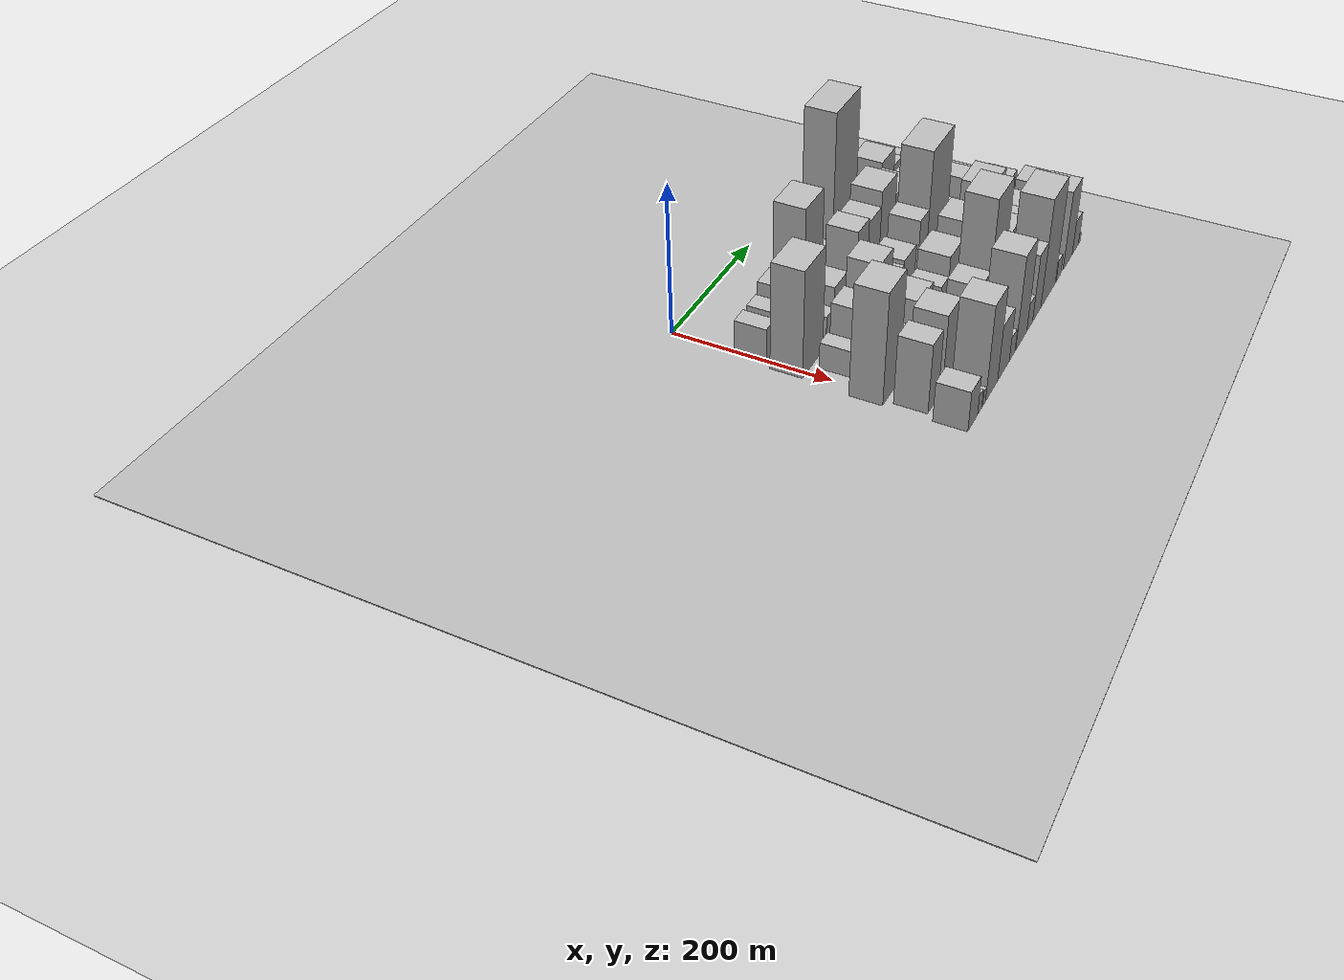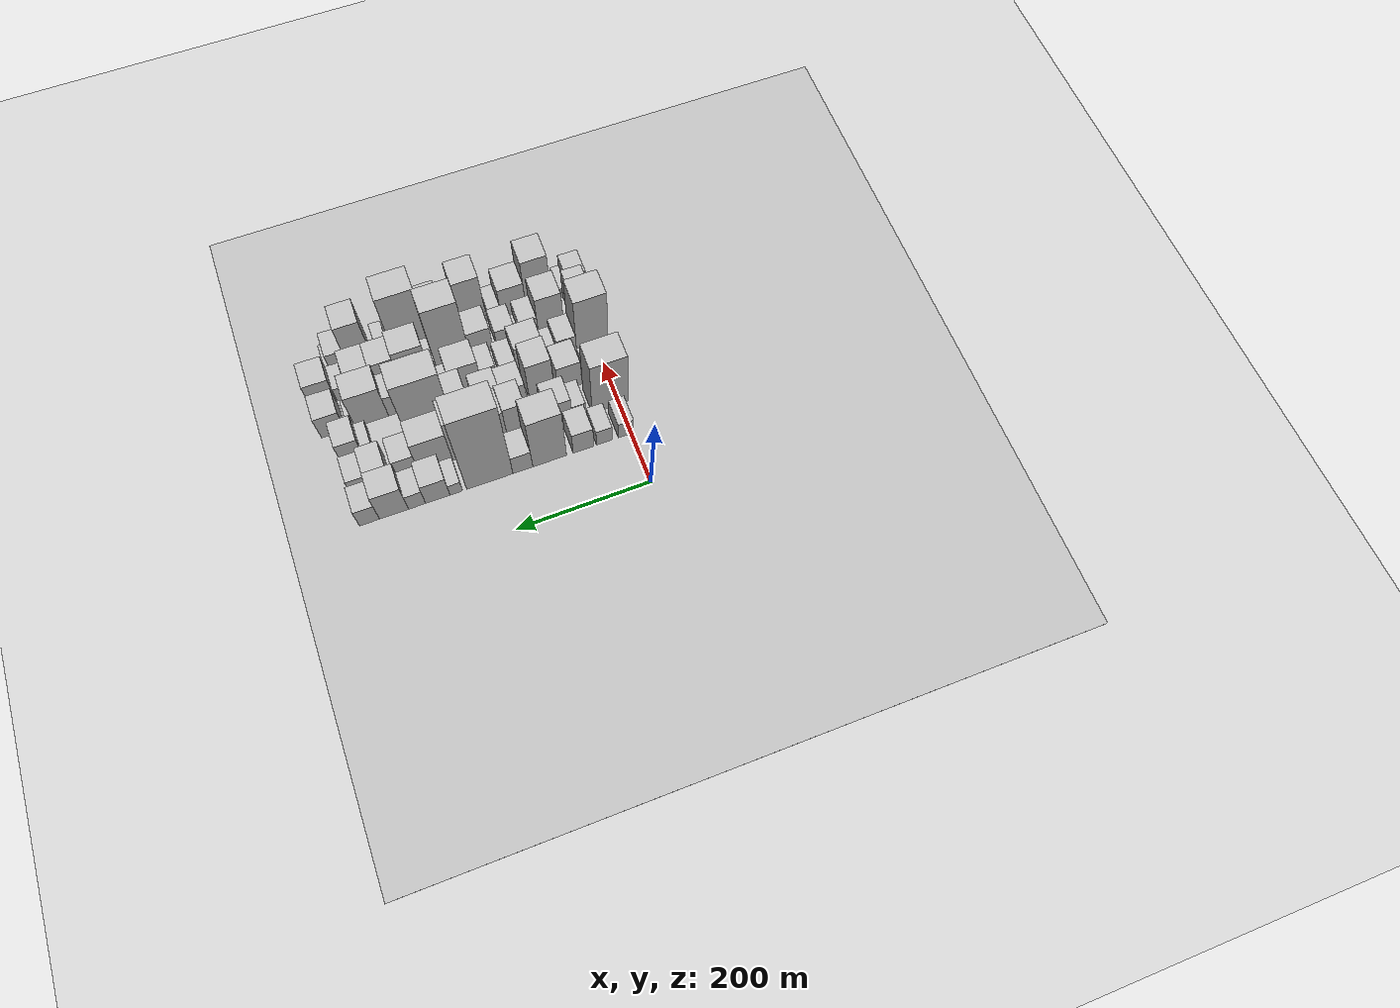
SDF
<sdf version="1.6">
 <world name="default">
  <include><name>ground_plane_1</name><uri>model://HANNAS_ground_plane</uri></include>
  <include>
   <name>ground_plane_2</name>
   <uri>model://HANNAS_ground_plane</uri>
   <pose>100 0 0  0 0 0</pose>
  </include>
  <model name="building_27">
   <static>1</static>
   <pose>100.0000 9.3571 0 0.000000 0.000000 0.000000</pose>
   <link name="link">
    <pose>0 0 22.50 0 0 0</pose>
    <collision name="collision"><geometry><box><size>40.0000 23.0918 45.0000</size></box></geometry></collision>
    <visual name="visual">
     <cast_shadows>0</cast_shadows>
     <geometry><box><size>40.0000 23.0918 45.0000</size></box></geometry>
     <material>
      <script>
       <uri>model://HANNAS_wall/materials/scripts</uri>
       <uri>model://HANNAS_wall/materials/textures</uri>
       <name>vrc/HANNAS_wall</name>
      </script>
     </material>
    </visual>
   </link>
  </model>
  <model name="building_28">
   <static>1</static>
   <pose>100.0000 41.8925 0 0.000000 0.000000 0.000000</pose>
   <link name="link">
    <pose>0 0 22.50 0 0 0</pose>
    <collision name="collision"><geometry><box><size>40.0000 23.9791 45.0000</size></box></geometry></collision>
    <visual name="visual">
     <cast_shadows>0</cast_shadows>
     <geometry><box><size>40.0000 23.9791 45.0000</size></box></geometry>
     <material>
      <script>
       <uri>model://HANNAS_wall/materials/scripts</uri>
       <uri>model://HANNAS_wall/materials/textures</uri>
       <name>vrc/HANNAS_wall</name>
      </script>
     </material>
    </visual>
   </link>
  </model>
  <model name="building_29">
   <static>1</static>
   <pose>100.0000 73.4881 0 0.000000 0.000000 0.000000</pose>
   <link name="link">
    <pose>0 0 30.00 0 0 0</pose>
    <collision name="collision"><geometry><box><size>40.0000 31.2120 60.0000</size></box></geometry></collision>
    <visual name="visual">
     <cast_shadows>0</cast_shadows>
     <geometry><box><size>40.0000 31.2120 60.0000</size></box></geometry>
     <material>
      <script>
       <uri>model://HANNAS_wall/materials/scripts</uri>
       <uri>model://HANNAS_wall/materials/textures</uri>
       <name>vrc/HANNAS_wall</name>
      </script>
     </material>
    </visual>
   </link>
  </model>
  <model name="building_30">
   <static>1</static>
   <pose>100.0000 124.2129 0 0.000000 0.000000 0.000000</pose>
   <link name="link">
    <pose>0 0 72.00 0 0 0</pose>
    <collision name="collision"><geometry><box><size>40.0000 50.2375 144.0000</size></box></geometry></collision>
    <visual name="visual">
     <cast_shadows>0</cast_shadows>
     <geometry><box><size>40.0000 50.2375 144.0000</size></box></geometry>
     <material>
      <script>
       <uri>model://HANNAS_wall/materials/scripts</uri>
       <uri>model://HANNAS_wall/materials/textures</uri>
       <name>vrc/HANNAS_wall</name>
      </script>
     </material>
    </visual>
   </link>
  </model>
  <model name="building_31">
   <static>1</static>
   <pose>100.0000 164.1089 0 0.000000 0.000000 0.000000</pose>
   <link name="link">
    <pose>0 0 27.00 0 0 0</pose>
    <collision name="collision"><geometry><box><size>40.0000 29.5546 54.0000</size></box></geometry></collision>
    <visual name="visual">
     <cast_shadows>0</cast_shadows>
     <geometry><box><size>40.0000 29.5546 54.0000</size></box></geometry>
     <material>
      <script>
       <uri>model://HANNAS_wall/materials/scripts</uri>
       <uri>model://HANNAS_wall/materials/textures</uri>
       <name>vrc/HANNAS_wall</name>
      </script>
     </material>
    </visual>
   </link>
  </model>
  <model name="building_32">
   <static>1</static>
   <pose>100.0000 213.0105 0 0.000000 0.000000 0.000000</pose>
   <link name="link">
    <pose>0 0 112.50 0 0 0</pose>
    <collision name="collision"><geometry><box><size>40.0000 68.2486 225.0000</size></box></geometry></collision>
    <visual name="visual">
     <cast_shadows>0</cast_shadows>
     <geometry><box><size>40.0000 68.2486 225.0000</size></box></geometry>
     <material>
      <script>
       <uri>model://HANNAS_wall/materials/scripts</uri>
       <uri>model://HANNAS_wall/materials/textures</uri>
       <name>vrc/HANNAS_wall</name>
      </script>
     </material>
    </visual>
   </link>
  </model>
  <model name="building_33">
   <static>1</static>
   <pose>100.0000 262.2809 0 0.000000 0.000000 0.000000</pose>
   <link name="link">
    <pose>0 0 16.50 0 0 0</pose>
    <collision name="collision"><geometry><box><size>40.0000 18.2922 33.0000</size></box></geometry></collision>
    <visual name="visual">
     <cast_shadows>0</cast_shadows>
     <geometry><box><size>40.0000 18.2922 33.0000</size></box></geometry>
     <material>
      <script>
       <uri>model://HANNAS_wall/materials/scripts</uri>
       <uri>model://HANNAS_wall/materials/textures</uri>
       <name>vrc/HANNAS_wall</name>
      </script>
     </material>
    </visual>
   </link>
  </model>
  <model name="building_34">
   <static>1</static>
   <pose>100.0000 289.1809 0 0.000000 0.000000 0.000000</pose>
   <link name="link">
    <pose>0 0 30.00 0 0 0</pose>
    <collision name="collision"><geometry><box><size>40.0000 35.5078 60.0000</size></box></geometry></collision>
    <visual name="visual">
     <cast_shadows>0</cast_shadows>
     <geometry><box><size>40.0000 35.5078 60.0000</size></box></geometry>
     <material>
      <script>
       <uri>model://HANNAS_wall/materials/scripts</uri>
       <uri>model://HANNAS_wall/materials/textures</uri>
       <name>vrc/HANNAS_wall</name>
      </script>
     </material>
    </visual>
   </link>
  </model>
  <model name="building_35">
   <static>1</static>
   <pose>100.0000 319.2703 0 0.000000 0.000000 0.000000</pose>
   <link name="link">
    <pose>0 0 22.50 0 0 0</pose>
    <collision name="collision"><geometry><box><size>40.0000 24.6710 45.0000</size></box></geometry></collision>
    <visual name="visual">
     <cast_shadows>0</cast_shadows>
     <geometry><box><size>40.0000 24.6710 45.0000</size></box></geometry>
     <material>
      <script>
       <uri>model://HANNAS_wall/materials/scripts</uri>
       <uri>model://HANNAS_wall/materials/textures</uri>
       <name>vrc/HANNAS_wall</name>
      </script>
     </material>
    </visual>
   </link>
  </model>
  <model name="building_36">
   <static>1</static>
   <pose>100.0000 352.4408 0 0.000000 0.000000 0.000000</pose>
   <link name="link">
    <pose>0 0 39.00 0 0 0</pose>
    <collision name="collision"><geometry><box><size>40.0000 41.6700 78.0000</size></box></geometry></collision>
    <visual name="visual">
     <cast_shadows>0</cast_shadows>
     <geometry><box><size>40.0000 41.6700 78.0000</size></box></geometry>
     <material>
      <script>
       <uri>model://HANNAS_wall/materials/scripts</uri>
       <uri>model://HANNAS_wall/materials/textures</uri>
       <name>vrc/HANNAS_wall</name>
      </script>
     </material>
    </visual>
   </link>
  </model>
  <model name="building_37">
   <static>1</static>
   <pose>100.0000 387.5940 0 0.000000 0.000000 0.000000</pose>
   <link name="link">
    <pose>0 0 25.50 0 0 0</pose>
    <collision name="collision"><geometry><box><size>40.0000 28.6363 51.0000</size></box></geometry></collision>
    <visual name="visual">
     <cast_shadows>0</cast_shadows>
     <geometry><box><size>40.0000 28.6363 51.0000</size></box></geometry>
     <material>
      <script>
       <uri>model://HANNAS_wall/materials/scripts</uri>
       <uri>model://HANNAS_wall/materials/textures</uri>
       <name>vrc/HANNAS_wall</name>
      </script>
     </material>
    </visual>
   </link>
  </model>
  <model name="building_76">
   <static>1</static>
   <pose>149.0000 15.7540 0 0.000000 0.000000 0.000000</pose>
   <link name="link">
    <pose>0 0 72.00 0 0 0</pose>
    <collision name="collision"><geometry><box><size>40.0000 54.6630 144.0000</size></box></geometry></collision>
    <visual name="visual">
     <cast_shadows>0</cast_shadows>
     <geometry><box><size>40.0000 54.6630 144.0000</size></box></geometry>
     <material>
      <script>
       <uri>model://HANNAS_wall/materials/scripts</uri>
       <uri>model://HANNAS_wall/materials/textures</uri>
       <name>vrc/HANNAS_wall</name>
      </script>
     </material>
    </visual>
   </link>
  </model>
  <model name="building_77">
   <static>1</static>
   <pose>149.0000 62.5877 0 0.000000 0.000000 0.000000</pose>
   <link name="link">
    <pose>0 0 21.00 0 0 0</pose>
    <collision name="collision"><geometry><box><size>40.0000 21.0043 42.0000</size></box></geometry></collision>
    <visual name="visual">
     <cast_shadows>0</cast_shadows>
     <geometry><box><size>40.0000 21.0043 42.0000</size></box></geometry>
     <material>
      <script>
       <uri>model://HANNAS_wall/materials/scripts</uri>
       <uri>model://HANNAS_wall/materials/textures</uri>
       <name>vrc/HANNAS_wall</name>
      </script>
     </material>
    </visual>
   </link>
  </model>
  <model name="building_78">
   <static>1</static>
   <pose>149.0000 91.2776 0 0.000000 0.000000 0.000000</pose>
   <link name="link">
    <pose>0 0 34.50 0 0 0</pose>
    <collision name="collision"><geometry><box><size>40.0000 36.3755 69.0000</size></box></geometry></collision>
    <visual name="visual">
     <cast_shadows>0</cast_shadows>
     <geometry><box><size>40.0000 36.3755 69.0000</size></box></geometry>
     <material>
      <script>
       <uri>model://HANNAS_wall/materials/scripts</uri>
       <uri>model://HANNAS_wall/materials/textures</uri>
       <name>vrc/HANNAS_wall</name>
      </script>
     </material>
    </visual>
   </link>
  </model>
  <model name="building_79">
   <static>1</static>
   <pose>149.0000 119.8651 0 0.000000 0.000000 0.000000</pose>
   <link name="link">
    <pose>0 0 19.50 0 0 0</pose>
    <collision name="collision"><geometry><box><size>40.0000 20.7996 39.0000</size></box></geometry></collision>
    <visual name="visual">
     <cast_shadows>0</cast_shadows>
     <geometry><box><size>40.0000 20.7996 39.0000</size></box></geometry>
     <material>
      <script>
       <uri>model://HANNAS_wall/materials/scripts</uri>
       <uri>model://HANNAS_wall/materials/textures</uri>
       <name>vrc/HANNAS_wall</name>
      </script>
     </material>
    </visual>
   </link>
  </model>
  <model name="building_80">
   <static>1</static>
   <pose>149.0000 153.3168 0 0.000000 0.000000 0.000000</pose>
   <link name="link">
    <pose>0 0 52.50 0 0 0</pose>
    <collision name="collision"><geometry><box><size>40.0000 32.1037 105.0000</size></box></geometry></collision>
    <visual name="visual">
     <cast_shadows>0</cast_shadows>
     <geometry><box><size>40.0000 32.1037 105.0000</size></box></geometry>
     <material>
      <script>
       <uri>model://HANNAS_wall/materials/scripts</uri>
       <uri>model://HANNAS_wall/materials/textures</uri>
       <name>vrc/HANNAS_wall</name>
      </script>
     </material>
    </visual>
   </link>
  </model>
  <model name="building_81">
   <static>1</static>
   <pose>149.0000 187.9750 0 0.000000 0.000000 0.000000</pose>
   <link name="link">
    <pose>0 0 49.50 0 0 0</pose>
    <collision name="collision"><geometry><box><size>40.0000 37.2128 99.0000</size></box></geometry></collision>
    <visual name="visual">
     <cast_shadows>0</cast_shadows>
     <geometry><box><size>40.0000 37.2128 99.0000</size></box></geometry>
     <material>
      <script>
       <uri>model://HANNAS_wall/materials/scripts</uri>
       <uri>model://HANNAS_wall/materials/textures</uri>
       <name>vrc/HANNAS_wall</name>
      </script>
     </material>
    </visual>
   </link>
  </model>
  <model name="building_82">
   <static>1</static>
   <pose>149.0000 229.4782 0 0.000000 0.000000 0.000000</pose>
   <link name="link">
    <pose>0 0 60.00 0 0 0</pose>
    <collision name="collision"><geometry><box><size>40.0000 45.7934 120.0000</size></box></geometry></collision>
    <visual name="visual">
     <cast_shadows>0</cast_shadows>
     <geometry><box><size>40.0000 45.7934 120.0000</size></box></geometry>
     <material>
      <script>
       <uri>model://HANNAS_wall/materials/scripts</uri>
       <uri>model://HANNAS_wall/materials/textures</uri>
       <name>vrc/HANNAS_wall</name>
      </script>
     </material>
    </visual>
   </link>
  </model>
  <model name="building_83">
   <static>1</static>
   <pose>149.0000 277.5151 0 0.000000 0.000000 0.000000</pose>
   <link name="link">
    <pose>0 0 45.00 0 0 0</pose>
    <collision name="collision"><geometry><box><size>40.0000 50.2805 90.0000</size></box></geometry></collision>
    <visual name="visual">
     <cast_shadows>0</cast_shadows>
     <geometry><box><size>40.0000 50.2805 90.0000</size></box></geometry>
     <material>
      <script>
       <uri>model://HANNAS_wall/materials/scripts</uri>
       <uri>model://HANNAS_wall/materials/textures</uri>
       <name>vrc/HANNAS_wall</name>
      </script>
     </material>
    </visual>
   </link>
  </model>
  <model name="building_84">
   <static>1</static>
   <pose>149.0000 318.5125 0 0.000000 0.000000 0.000000</pose>
   <link name="link">
    <pose>0 0 28.50 0 0 0</pose>
    <collision name="collision"><geometry><box><size>40.0000 31.7142 57.0000</size></box></geometry></collision>
    <visual name="visual">
     <cast_shadows>0</cast_shadows>
     <geometry><box><size>40.0000 31.7142 57.0000</size></box></geometry>
     <material>
      <script>
       <uri>model://HANNAS_wall/materials/scripts</uri>
       <uri>model://HANNAS_wall/materials/textures</uri>
       <name>vrc/HANNAS_wall</name>
      </script>
     </material>
    </visual>
   </link>
  </model>
  <model name="building_85">
   <static>1</static>
   <pose>149.0000 358.6118 0 0.000000 0.000000 0.000000</pose>
   <link name="link">
    <pose>0 0 28.50 0 0 0</pose>
    <collision name="collision"><geometry><box><size>40.0000 32.4843 57.0000</size></box></geometry></collision>
    <visual name="visual">
     <cast_shadows>0</cast_shadows>
     <geometry><box><size>40.0000 32.4843 57.0000</size></box></geometry>
     <material>
      <script>
       <uri>model://HANNAS_wall/materials/scripts</uri>
       <uri>model://HANNAS_wall/materials/textures</uri>
       <name>vrc/HANNAS_wall</name>
      </script>
     </material>
    </visual>
   </link>
  </model>
  <model name="building_86">
   <static>1</static>
   <pose>149.0000 387.8299 0 0.000000 0.000000 0.000000</pose>
   <link name="link">
    <pose>0 0 22.50 0 0 0</pose>
    <collision name="collision"><geometry><box><size>40.0000 25.9520 45.0000</size></box></geometry></collision>
    <visual name="visual">
     <cast_shadows>0</cast_shadows>
     <geometry><box><size>40.0000 25.9520 45.0000</size></box></geometry>
     <material>
      <script>
       <uri>model://HANNAS_wall/materials/scripts</uri>
       <uri>model://HANNAS_wall/materials/textures</uri>
       <name>vrc/HANNAS_wall</name>
      </script>
     </material>
    </visual>
   </link>
  </model>
  <model name="building_126">
   <static>1</static>
   <pose>198.0000 23.7838 0 0.000000 0.000000 0.000000</pose>
   <link name="link">
    <pose>0 0 18.00 0 0 0</pose>
    <collision name="collision"><geometry><box><size>40.0000 21.3088 36.0000</size></box></geometry></collision>
    <visual name="visual">
     <cast_shadows>0</cast_shadows>
     <geometry><box><size>40.0000 21.3088 36.0000</size></box></geometry>
     <material>
      <script>
       <uri>model://HANNAS_wall/materials/scripts</uri>
       <uri>model://HANNAS_wall/materials/textures</uri>
       <name>vrc/HANNAS_wall</name>
      </script>
     </material>
    </visual>
   </link>
  </model>
  <model name="building_127">
   <static>1</static>
   <pose>198.0000 59.6754 0 0.000000 0.000000 0.000000</pose>
   <link name="link">
    <pose>0 0 36.00 0 0 0</pose>
    <collision name="collision"><geometry><box><size>40.0000 36.4743 72.0000</size></box></geometry></collision>
    <visual name="visual">
     <cast_shadows>0</cast_shadows>
     <geometry><box><size>40.0000 36.4743 72.0000</size></box></geometry>
     <material>
      <script>
       <uri>model://HANNAS_wall/materials/scripts</uri>
       <uri>model://HANNAS_wall/materials/textures</uri>
       <name>vrc/HANNAS_wall</name>
      </script>
     </material>
    </visual>
   </link>
  </model>
  <model name="building_128">
   <static>1</static>
   <pose>198.0000 101.9829 0 0.000000 0.000000 0.000000</pose>
   <link name="link">
    <pose>0 0 54.00 0 0 0</pose>
    <collision name="collision"><geometry><box><size>40.0000 38.1408 108.0000</size></box></geometry></collision>
    <visual name="visual">
     <cast_shadows>0</cast_shadows>
     <geometry><box><size>40.0000 38.1408 108.0000</size></box></geometry>
     <material>
      <script>
       <uri>model://HANNAS_wall/materials/scripts</uri>
       <uri>model://HANNAS_wall/materials/textures</uri>
       <name>vrc/HANNAS_wall</name>
      </script>
     </material>
    </visual>
   </link>
  </model>
  <model name="building_129">
   <static>1</static>
   <pose>198.0000 142.9871 0 0.000000 0.000000 0.000000</pose>
   <link name="link">
    <pose>0 0 30.00 0 0 0</pose>
    <collision name="collision"><geometry><box><size>40.0000 35.8675 60.0000</size></box></geometry></collision>
    <visual name="visual">
     <cast_shadows>0</cast_shadows>
     <geometry><box><size>40.0000 35.8675 60.0000</size></box></geometry>
     <material>
      <script>
       <uri>model://HANNAS_wall/materials/scripts</uri>
       <uri>model://HANNAS_wall/materials/textures</uri>
       <name>vrc/HANNAS_wall</name>
      </script>
     </material>
    </visual>
   </link>
  </model>
  <model name="building_130">
   <static>1</static>
   <pose>198.0000 179.4996 0 0.000000 0.000000 0.000000</pose>
   <link name="link">
    <pose>0 0 33.00 0 0 0</pose>
    <collision name="collision"><geometry><box><size>40.0000 37.1576 66.0000</size></box></geometry></collision>
    <visual name="visual">
     <cast_shadows>0</cast_shadows>
     <geometry><box><size>40.0000 37.1576 66.0000</size></box></geometry>
     <material>
      <script>
       <uri>model://HANNAS_wall/materials/scripts</uri>
       <uri>model://HANNAS_wall/materials/textures</uri>
       <name>vrc/HANNAS_wall</name>
      </script>
     </material>
    </visual>
   </link>
  </model>
  <model name="building_131">
   <static>1</static>
   <pose>198.0000 202.4653 0 0.000000 0.000000 0.000000</pose>
   <link name="link">
    <pose>0 0 9.00 0 0 0</pose>
    <collision name="collision"><geometry><box><size>40.0000 8.7737 18.0000</size></box></geometry></collision>
    <visual name="visual">
     <cast_shadows>0</cast_shadows>
     <geometry><box><size>40.0000 8.7737 18.0000</size></box></geometry>
     <material>
      <script>
       <uri>model://HANNAS_wall/materials/scripts</uri>
       <uri>model://HANNAS_wall/materials/textures</uri>
       <name>vrc/HANNAS_wall</name>
      </script>
     </material>
    </visual>
   </link>
  </model>
  <model name="building_132">
   <static>1</static>
   <pose>198.0000 220.9823 0 0.000000 0.000000 0.000000</pose>
   <link name="link">
    <pose>0 0 46.50 0 0 0</pose>
    <collision name="collision"><geometry><box><size>40.0000 28.2605 93.0000</size></box></geometry></collision>
    <visual name="visual">
     <cast_shadows>0</cast_shadows>
     <geometry><box><size>40.0000 28.2605 93.0000</size></box></geometry>
     <material>
      <script>
       <uri>model://HANNAS_wall/materials/scripts</uri>
       <uri>model://HANNAS_wall/materials/textures</uri>
       <name>vrc/HANNAS_wall</name>
      </script>
     </material>
    </visual>
   </link>
  </model>
  <model name="building_133">
   <static>1</static>
   <pose>198.0000 268.8420 0 0.000000 0.000000 0.000000</pose>
   <link name="link">
    <pose>0 0 85.50 0 0 0</pose>
    <collision name="collision"><geometry><box><size>40.0000 67.4587 171.0000</size></box></geometry></collision>
    <visual name="visual">
     <cast_shadows>0</cast_shadows>
     <geometry><box><size>40.0000 67.4587 171.0000</size></box></geometry>
     <material>
      <script>
       <uri>model://HANNAS_wall/materials/scripts</uri>
       <uri>model://HANNAS_wall/materials/textures</uri>
       <name>vrc/HANNAS_wall</name>
      </script>
     </material>
    </visual>
   </link>
  </model>
  <model name="building_134">
   <static>1</static>
   <pose>198.0000 361.0840 0 0.000000 0.000000 0.000000</pose>
   <link name="link">
    <pose>0 0 15.00 0 0 0</pose>
    <collision name="collision"><geometry><box><size>40.0000 15.6751 30.0000</size></box></geometry></collision>
    <visual name="visual">
     <cast_shadows>0</cast_shadows>
     <geometry><box><size>40.0000 15.6751 30.0000</size></box></geometry>
     <material>
      <script>
       <uri>model://HANNAS_wall/materials/scripts</uri>
       <uri>model://HANNAS_wall/materials/textures</uri>
       <name>vrc/HANNAS_wall</name>
      </script>
     </material>
    </visual>
   </link>
  </model>
  <model name="building_135">
   <static>1</static>
   <pose>198.0000 384.7968 0 0.000000 0.000000 0.000000</pose>
   <link name="link">
    <pose>0 0 30.00 0 0 0</pose>
    <collision name="collision"><geometry><box><size>40.0000 31.7506 60.0000</size></box></geometry></collision>
    <visual name="visual">
     <cast_shadows>0</cast_shadows>
     <geometry><box><size>40.0000 31.7506 60.0000</size></box></geometry>
     <material>
      <script>
       <uri>model://HANNAS_wall/materials/scripts</uri>
       <uri>model://HANNAS_wall/materials/textures</uri>
       <name>vrc/HANNAS_wall</name>
      </script>
     </material>
    </visual>
   </link>
  </model>
  <model name="building_170">
   <static>1</static>
   <pose>247.0000 7.4792 0 0.000000 0.000000 0.000000</pose>
   <link name="link">
    <pose>0 0 75.00 0 0 0</pose>
    <collision name="collision"><geometry><box><size>40.0000 49.0729 150.0000</size></box></geometry></collision>
    <visual name="visual">
     <cast_shadows>0</cast_shadows>
     <geometry><box><size>40.0000 49.0729 150.0000</size></box></geometry>
     <material>
      <script>
       <uri>model://HANNAS_wall/materials/scripts</uri>
       <uri>model://HANNAS_wall/materials/textures</uri>
       <name>vrc/HANNAS_wall</name>
      </script>
     </material>
    </visual>
   </link>
  </model>
  <model name="building_171">
   <static>1</static>
   <pose>247.0000 46.6485 0 0.000000 0.000000 0.000000</pose>
   <link name="link">
    <pose>0 0 28.50 0 0 0</pose>
    <collision name="collision"><geometry><box><size>40.0000 29.2657 57.0000</size></box></geometry></collision>
    <visual name="visual">
     <cast_shadows>0</cast_shadows>
     <geometry><box><size>40.0000 29.2657 57.0000</size></box></geometry>
     <material>
      <script>
       <uri>model://HANNAS_wall/materials/scripts</uri>
       <uri>model://HANNAS_wall/materials/textures</uri>
       <name>vrc/HANNAS_wall</name>
      </script>
     </material>
    </visual>
   </link>
  </model>
  <model name="building_172">
   <static>1</static>
   <pose>247.0000 71.2828 0 0.000000 0.000000 0.000000</pose>
   <link name="link">
    <pose>0 0 18.00 0 0 0</pose>
    <collision name="collision"><geometry><box><size>40.0000 20.0029 36.0000</size></box></geometry></collision>
    <visual name="visual">
     <cast_shadows>0</cast_shadows>
     <geometry><box><size>40.0000 20.0029 36.0000</size></box></geometry>
     <material>
      <script>
       <uri>model://HANNAS_wall/materials/scripts</uri>
       <uri>model://HANNAS_wall/materials/textures</uri>
       <name>vrc/HANNAS_wall</name>
      </script>
     </material>
    </visual>
   </link>
  </model>
  <model name="building_173">
   <static>1</static>
   <pose>247.0000 102.5531 0 0.000000 0.000000 0.000000</pose>
   <link name="link">
    <pose>0 0 37.50 0 0 0</pose>
    <collision name="collision"><geometry><box><size>40.0000 42.5377 75.0000</size></box></geometry></collision>
    <visual name="visual">
     <cast_shadows>0</cast_shadows>
     <geometry><box><size>40.0000 42.5377 75.0000</size></box></geometry>
     <material>
      <script>
       <uri>model://HANNAS_wall/materials/scripts</uri>
       <uri>model://HANNAS_wall/materials/textures</uri>
       <name>vrc/HANNAS_wall</name>
      </script>
     </material>
    </visual>
   </link>
  </model>
  <model name="building_174">
   <static>1</static>
   <pose>247.0000 136.4030 0 0.000000 0.000000 0.000000</pose>
   <link name="link">
    <pose>0 0 21.00 0 0 0</pose>
    <collision name="collision"><geometry><box><size>40.0000 25.1622 42.0000</size></box></geometry></collision>
    <visual name="visual">
     <cast_shadows>0</cast_shadows>
     <geometry><box><size>40.0000 25.1622 42.0000</size></box></geometry>
     <material>
      <script>
       <uri>model://HANNAS_wall/materials/scripts</uri>
       <uri>model://HANNAS_wall/materials/textures</uri>
       <name>vrc/HANNAS_wall</name>
      </script>
     </material>
    </visual>
   </link>
  </model>
  <model name="building_175">
   <static>1</static>
   <pose>247.0000 166.0942 0 0.000000 0.000000 0.000000</pose>
   <link name="link">
    <pose>0 0 24.00 0 0 0</pose>
    <collision name="collision"><geometry><box><size>40.0000 24.2201 48.0000</size></box></geometry></collision>
    <visual name="visual">
     <cast_shadows>0</cast_shadows>
     <geometry><box><size>40.0000 24.2201 48.0000</size></box></geometry>
     <material>
      <script>
       <uri>model://HANNAS_wall/materials/scripts</uri>
       <uri>model://HANNAS_wall/materials/textures</uri>
       <name>vrc/HANNAS_wall</name>
      </script>
     </material>
    </visual>
   </link>
  </model>
  <model name="building_176">
   <static>1</static>
   <pose>247.0000 200.3875 0 0.000000 0.000000 0.000000</pose>
   <link name="link">
    <pose>0 0 37.50 0 0 0</pose>
    <collision name="collision"><geometry><box><size>40.0000 44.3667 75.0000</size></box></geometry></collision>
    <visual name="visual">
     <cast_shadows>0</cast_shadows>
     <geometry><box><size>40.0000 44.3667 75.0000</size></box></geometry>
     <material>
      <script>
       <uri>model://HANNAS_wall/materials/scripts</uri>
       <uri>model://HANNAS_wall/materials/textures</uri>
       <name>vrc/HANNAS_wall</name>
      </script>
     </material>
    </visual>
   </link>
  </model>
  <model name="building_177">
   <static>1</static>
   <pose>247.0000 228.5130 0 0.000000 0.000000 0.000000</pose>
   <link name="link">
    <pose>0 0 13.50 0 0 0</pose>
    <collision name="collision"><geometry><box><size>40.0000 11.8844 27.0000</size></box></geometry></collision>
    <visual name="visual">
     <cast_shadows>0</cast_shadows>
     <geometry><box><size>40.0000 11.8844 27.0000</size></box></geometry>
     <material>
      <script>
       <uri>model://HANNAS_wall/materials/scripts</uri>
       <uri>model://HANNAS_wall/materials/textures</uri>
       <name>vrc/HANNAS_wall</name>
      </script>
     </material>
    </visual>
   </link>
  </model>
  <model name="building_178">
   <static>1</static>
   <pose>247.0000 263.5011 0 0.000000 0.000000 0.000000</pose>
   <link name="link">
    <pose>0 0 42.00 0 0 0</pose>
    <collision name="collision"><geometry><box><size>40.0000 44.0916 84.0000</size></box></geometry></collision>
    <visual name="visual">
     <cast_shadows>0</cast_shadows>
     <geometry><box><size>40.0000 44.0916 84.0000</size></box></geometry>
     <material>
      <script>
       <uri>model://HANNAS_wall/materials/scripts</uri>
       <uri>model://HANNAS_wall/materials/textures</uri>
       <name>vrc/HANNAS_wall</name>
      </script>
     </material>
    </visual>
   </link>
  </model>
  <model name="building_179">
   <static>1</static>
   <pose>247.0000 302.2356 0 0.000000 0.000000 0.000000</pose>
   <link name="link">
    <pose>0 0 28.50 0 0 0</pose>
    <collision name="collision"><geometry><box><size>40.0000 33.3774 57.0000</size></box></geometry></collision>
    <visual name="visual">
     <cast_shadows>0</cast_shadows>
     <geometry><box><size>40.0000 33.3774 57.0000</size></box></geometry>
     <material>
      <script>
       <uri>model://HANNAS_wall/materials/scripts</uri>
       <uri>model://HANNAS_wall/materials/textures</uri>
       <name>vrc/HANNAS_wall</name>
      </script>
     </material>
    </visual>
   </link>
  </model>
  <model name="building_180">
   <static>1</static>
   <pose>247.0000 343.6922 0 0.000000 0.000000 0.000000</pose>
   <link name="link">
    <pose>0 0 45.00 0 0 0</pose>
    <collision name="collision"><geometry><box><size>40.0000 49.5358 90.0000</size></box></geometry></collision>
    <visual name="visual">
     <cast_shadows>0</cast_shadows>
     <geometry><box><size>40.0000 49.5358 90.0000</size></box></geometry>
     <material>
      <script>
       <uri>model://HANNAS_wall/materials/scripts</uri>
       <uri>model://HANNAS_wall/materials/textures</uri>
       <name>vrc/HANNAS_wall</name>
      </script>
     </material>
    </visual>
   </link>
  </model>
  <model name="building_181">
   <static>1</static>
   <pose>247.0000 375.0054 0 0.000000 0.000000 0.000000</pose>
   <link name="link">
    <pose>0 0 7.50 0 0 0</pose>
    <collision name="collision"><geometry><box><size>40.0000 7.0905 15.0000</size></box></geometry></collision>
    <visual name="visual">
     <cast_shadows>0</cast_shadows>
     <geometry><box><size>40.0000 7.0905 15.0000</size></box></geometry>
     <material>
      <script>
       <uri>model://HANNAS_wall/materials/scripts</uri>
       <uri>model://HANNAS_wall/materials/textures</uri>
       <name>vrc/HANNAS_wall</name>
      </script>
     </material>
    </visual>
   </link>
  </model>
  <model name="building_182">
   <static>1</static>
   <pose>247.0000 400.3014 0 0.000000 0.000000 0.000000</pose>
   <link name="link">
    <pose>0 0 30.00 0 0 0</pose>
    <collision name="collision"><geometry><box><size>40.0000 35.5016 60.0000</size></box></geometry></collision>
    <visual name="visual">
     <cast_shadows>0</cast_shadows>
     <geometry><box><size>40.0000 35.5016 60.0000</size></box></geometry>
     <material>
      <script>
       <uri>model://HANNAS_wall/materials/scripts</uri>
       <uri>model://HANNAS_wall/materials/textures</uri>
       <name>vrc/HANNAS_wall</name>
      </script>
     </material>
    </visual>
   </link>
  </model>
  <model name="building_220">
   <static>1</static>
   <pose>296.0000 6.8689 0 0.000000 0.000000 0.000000</pose>
   <link name="link">
    <pose>0 0 46.50 0 0 0</pose>
    <collision name="collision"><geometry><box><size>40.0000 30.7961 93.0000</size></box></geometry></collision>
    <visual name="visual">
     <cast_shadows>0</cast_shadows>
     <geometry><box><size>40.0000 30.7961 93.0000</size></box></geometry>
     <material>
      <script>
       <uri>model://HANNAS_wall/materials/scripts</uri>
       <uri>model://HANNAS_wall/materials/textures</uri>
       <name>vrc/HANNAS_wall</name>
      </script>
     </material>
    </visual>
   </link>
  </model>
  <model name="building_221">
   <static>1</static>
   <pose>296.0000 26.6525 0 0.000000 0.000000 0.000000</pose>
   <link name="link">
    <pose>0 0 9.00 0 0 0</pose>
    <collision name="collision"><geometry><box><size>40.0000 8.7711 18.0000</size></box></geometry></collision>
    <visual name="visual">
     <cast_shadows>0</cast_shadows>
     <geometry><box><size>40.0000 8.7711 18.0000</size></box></geometry>
     <material>
      <script>
       <uri>model://HANNAS_wall/materials/scripts</uri>
       <uri>model://HANNAS_wall/materials/textures</uri>
       <name>vrc/HANNAS_wall</name>
      </script>
     </material>
    </visual>
   </link>
  </model>
  <model name="building_222">
   <static>1</static>
   <pose>296.0000 54.7422 0 0.000000 0.000000 0.000000</pose>
   <link name="link">
    <pose>0 0 51.00 0 0 0</pose>
    <collision name="collision"><geometry><box><size>40.0000 39.4083 102.0000</size></box></geometry></collision>
    <visual name="visual">
     <cast_shadows>0</cast_shadows>
     <geometry><box><size>40.0000 39.4083 102.0000</size></box></geometry>
     <material>
      <script>
       <uri>model://HANNAS_wall/materials/scripts</uri>
       <uri>model://HANNAS_wall/materials/textures</uri>
       <name>vrc/HANNAS_wall</name>
      </script>
     </material>
    </visual>
   </link>
  </model>
  <model name="building_223">
   <static>1</static>
   <pose>296.0000 88.0322 0 0.000000 0.000000 0.000000</pose>
   <link name="link">
    <pose>0 0 27.00 0 0 0</pose>
    <collision name="collision"><geometry><box><size>40.0000 27.1716 54.0000</size></box></geometry></collision>
    <visual name="visual">
     <cast_shadows>0</cast_shadows>
     <geometry><box><size>40.0000 27.1716 54.0000</size></box></geometry>
     <material>
      <script>
       <uri>model://HANNAS_wall/materials/scripts</uri>
       <uri>model://HANNAS_wall/materials/textures</uri>
       <name>vrc/HANNAS_wall</name>
      </script>
     </material>
    </visual>
   </link>
  </model>
  <model name="building_224">
   <static>1</static>
   <pose>296.0000 105.3160 0 0.000000 0.000000 0.000000</pose>
   <link name="link">
    <pose>0 0 7.50 0 0 0</pose>
    <collision name="collision"><geometry><box><size>40.0000 7.3960 15.0000</size></box></geometry></collision>
    <visual name="visual">
     <cast_shadows>0</cast_shadows>
     <geometry><box><size>40.0000 7.3960 15.0000</size></box></geometry>
     <material>
      <script>
       <uri>model://HANNAS_wall/materials/scripts</uri>
       <uri>model://HANNAS_wall/materials/textures</uri>
       <name>vrc/HANNAS_wall</name>
      </script>
     </material>
    </visual>
   </link>
  </model>
  <model name="building_225">
   <static>1</static>
   <pose>296.0000 123.9226 0 0.000000 0.000000 0.000000</pose>
   <link name="link">
    <pose>0 0 25.50 0 0 0</pose>
    <collision name="collision"><geometry><box><size>40.0000 29.8172 51.0000</size></box></geometry></collision>
    <visual name="visual">
     <cast_shadows>0</cast_shadows>
     <geometry><box><size>40.0000 29.8172 51.0000</size></box></geometry>
     <material>
      <script>
       <uri>model://HANNAS_wall/materials/scripts</uri>
       <uri>model://HANNAS_wall/materials/textures</uri>
       <name>vrc/HANNAS_wall</name>
      </script>
     </material>
    </visual>
   </link>
  </model>
  <model name="building_226">
   <static>1</static>
   <pose>296.0000 162.6712 0 0.000000 0.000000 0.000000</pose>
   <link name="link">
    <pose>0 0 34.50 0 0 0</pose>
    <collision name="collision"><geometry><box><size>40.0000 35.6801 69.0000</size></box></geometry></collision>
    <visual name="visual">
     <cast_shadows>0</cast_shadows>
     <geometry><box><size>40.0000 35.6801 69.0000</size></box></geometry>
     <material>
      <script>
       <uri>model://HANNAS_wall/materials/scripts</uri>
       <uri>model://HANNAS_wall/materials/textures</uri>
       <name>vrc/HANNAS_wall</name>
      </script>
     </material>
    </visual>
   </link>
  </model>
  <model name="building_227">
   <static>1</static>
   <pose>296.0000 206.5520 0 0.000000 0.000000 0.000000</pose>
   <link name="link">
    <pose>0 0 82.50 0 0 0</pose>
    <collision name="collision"><geometry><box><size>40.0000 52.0815 165.0000</size></box></geometry></collision>
    <visual name="visual">
     <cast_shadows>0</cast_shadows>
     <geometry><box><size>40.0000 52.0815 165.0000</size></box></geometry>
     <material>
      <script>
       <uri>model://HANNAS_wall/materials/scripts</uri>
       <uri>model://HANNAS_wall/materials/textures</uri>
       <name>vrc/HANNAS_wall</name>
      </script>
     </material>
    </visual>
   </link>
  </model>
  <model name="building_228">
   <static>1</static>
   <pose>296.0000 238.0715 0 0.000000 0.000000 0.000000</pose>
   <link name="link">
    <pose>0 0 13.50 0 0 0</pose>
    <collision name="collision"><geometry><box><size>40.0000 10.9575 27.0000</size></box></geometry></collision>
    <visual name="visual">
     <cast_shadows>0</cast_shadows>
     <geometry><box><size>40.0000 10.9575 27.0000</size></box></geometry>
     <material>
      <script>
       <uri>model://HANNAS_wall/materials/scripts</uri>
       <uri>model://HANNAS_wall/materials/textures</uri>
       <name>vrc/HANNAS_wall</name>
      </script>
     </material>
    </visual>
   </link>
  </model>
  <model name="building_229">
   <static>1</static>
   <pose>296.0000 266.3587 0 0.000000 0.000000 0.000000</pose>
   <link name="link">
    <pose>0 0 40.50 0 0 0</pose>
    <collision name="collision"><geometry><box><size>40.0000 45.6169 81.0000</size></box></geometry></collision>
    <visual name="visual">
     <cast_shadows>0</cast_shadows>
     <geometry><box><size>40.0000 45.6169 81.0000</size></box></geometry>
     <material>
      <script>
       <uri>model://HANNAS_wall/materials/scripts</uri>
       <uri>model://HANNAS_wall/materials/textures</uri>
       <name>vrc/HANNAS_wall</name>
      </script>
     </material>
    </visual>
   </link>
  </model>
  <model name="building_230">
   <static>1</static>
   <pose>296.0000 306.7571 0 0.000000 0.000000 0.000000</pose>
   <link name="link">
    <pose>0 0 34.50 0 0 0</pose>
    <collision name="collision"><geometry><box><size>40.0000 35.1798 69.0000</size></box></geometry></collision>
    <visual name="visual">
     <cast_shadows>0</cast_shadows>
     <geometry><box><size>40.0000 35.1798 69.0000</size></box></geometry>
     <material>
      <script>
       <uri>model://HANNAS_wall/materials/scripts</uri>
       <uri>model://HANNAS_wall/materials/textures</uri>
       <name>vrc/HANNAS_wall</name>
      </script>
     </material>
    </visual>
   </link>
  </model>
  <model name="building_231">
   <static>1</static>
   <pose>296.0000 342.5230 0 0.000000 0.000000 0.000000</pose>
   <link name="link">
    <pose>0 0 34.50 0 0 0</pose>
    <collision name="collision"><geometry><box><size>40.0000 36.3520 69.0000</size></box></geometry></collision>
    <visual name="visual">
     <cast_shadows>0</cast_shadows>
     <geometry><box><size>40.0000 36.3520 69.0000</size></box></geometry>
     <material>
      <script>
       <uri>model://HANNAS_wall/materials/scripts</uri>
       <uri>model://HANNAS_wall/materials/textures</uri>
       <name>vrc/HANNAS_wall</name>
      </script>
     </material>
    </visual>
   </link>
  </model>
  <model name="building_232">
   <static>1</static>
   <pose>296.0000 372.9987 0 0.000000 0.000000 0.000000</pose>
   <link name="link">
    <pose>0 0 18.00 0 0 0</pose>
    <collision name="collision"><geometry><box><size>40.0000 18.5994 36.0000</size></box></geometry></collision>
    <visual name="visual">
     <cast_shadows>0</cast_shadows>
     <geometry><box><size>40.0000 18.5994 36.0000</size></box></geometry>
     <material>
      <script>
       <uri>model://HANNAS_wall/materials/scripts</uri>
       <uri>model://HANNAS_wall/materials/textures</uri>
       <name>vrc/HANNAS_wall</name>
      </script>
     </material>
    </visual>
   </link>
  </model>
  <model name="building_233">
   <static>1</static>
   <pose>296.0000 400.7931 0 0.000000 0.000000 0.000000</pose>
   <link name="link">
    <pose>0 0 34.50 0 0 0</pose>
    <collision name="collision"><geometry><box><size>40.0000 36.9895 69.0000</size></box></geometry></collision>
    <visual name="visual">
     <cast_shadows>0</cast_shadows>
     <geometry><box><size>40.0000 36.9895 69.0000</size></box></geometry>
     <material>
      <script>
       <uri>model://HANNAS_wall/materials/scripts</uri>
       <uri>model://HANNAS_wall/materials/textures</uri>
       <name>vrc/HANNAS_wall</name>
      </script>
     </material>
    </visual>
   </link>
  </model>
  <model name="building_268">
   <static>1</static>
   <pose>345.0000 -2.8906 0 0.000000 0.000000 0.000000</pose>
   <link name="link">
    <pose>0 0 27.00 0 0 0</pose>
    <collision name="collision"><geometry><box><size>40.0000 30.1603 54.0000</size></box></geometry></collision>
    <visual name="visual">
     <cast_shadows>0</cast_shadows>
     <geometry><box><size>40.0000 30.1603 54.0000</size></box></geometry>
     <material>
      <script>
       <uri>model://HANNAS_wall/materials/scripts</uri>
       <uri>model://HANNAS_wall/materials/textures</uri>
       <name>vrc/HANNAS_wall</name>
      </script>
     </material>
    </visual>
   </link>
  </model>
  <model name="building_269">
   <static>1</static>
   <pose>345.0000 18.7565 0 0.000000 0.000000 0.000000</pose>
   <link name="link">
    <pose>0 0 13.50 0 0 0</pose>
    <collision name="collision"><geometry><box><size>40.0000 13.1339 27.0000</size></box></geometry></collision>
    <visual name="visual">
     <cast_shadows>0</cast_shadows>
     <geometry><box><size>40.0000 13.1339 27.0000</size></box></geometry>
     <material>
      <script>
       <uri>model://HANNAS_wall/materials/scripts</uri>
       <uri>model://HANNAS_wall/materials/textures</uri>
       <name>vrc/HANNAS_wall</name>
      </script>
     </material>
    </visual>
   </link>
  </model>
  <model name="building_270">
   <static>1</static>
   <pose>345.0000 33.1352 0 0.000000 0.000000 0.000000</pose>
   <link name="link">
    <pose>0 0 10.50 0 0 0</pose>
    <collision name="collision"><geometry><box><size>40.0000 9.6235 21.0000</size></box></geometry></collision>
    <visual name="visual">
     <cast_shadows>0</cast_shadows>
     <geometry><box><size>40.0000 9.6235 21.0000</size></box></geometry>
     <material>
      <script>
       <uri>model://HANNAS_wall/materials/scripts</uri>
       <uri>model://HANNAS_wall/materials/textures</uri>
       <name>vrc/HANNAS_wall</name>
      </script>
     </material>
    </visual>
   </link>
  </model>
  <model name="building_271">
   <static>1</static>
   <pose>345.0000 57.7814 0 0.000000 0.000000 0.000000</pose>
   <link name="link">
    <pose>0 0 64.50 0 0 0</pose>
    <collision name="collision"><geometry><box><size>40.0000 39.6687 129.0000</size></box></geometry></collision>
    <visual name="visual">
     <cast_shadows>0</cast_shadows>
     <geometry><box><size>40.0000 39.6687 129.0000</size></box></geometry>
     <material>
      <script>
       <uri>model://HANNAS_wall/materials/scripts</uri>
       <uri>model://HANNAS_wall/materials/textures</uri>
       <name>vrc/HANNAS_wall</name>
      </script>
     </material>
    </visual>
   </link>
  </model>
  <model name="building_272">
   <static>1</static>
   <pose>345.0000 97.2969 0 0.000000 0.000000 0.000000</pose>
   <link name="link">
    <pose>0 0 37.50 0 0 0</pose>
    <collision name="collision"><geometry><box><size>40.0000 39.3624 75.0000</size></box></geometry></collision>
    <visual name="visual">
     <cast_shadows>0</cast_shadows>
     <geometry><box><size>40.0000 39.3624 75.0000</size></box></geometry>
     <material>
      <script>
       <uri>model://HANNAS_wall/materials/scripts</uri>
       <uri>model://HANNAS_wall/materials/textures</uri>
       <name>vrc/HANNAS_wall</name>
      </script>
     </material>
    </visual>
   </link>
  </model>
  <model name="building_273">
   <static>1</static>
   <pose>345.0000 126.5739 0 0.000000 0.000000 0.000000</pose>
   <link name="link">
    <pose>0 0 16.50 0 0 0</pose>
    <collision name="collision"><geometry><box><size>40.0000 19.1916 33.0000</size></box></geometry></collision>
    <visual name="visual">
     <cast_shadows>0</cast_shadows>
     <geometry><box><size>40.0000 19.1916 33.0000</size></box></geometry>
     <material>
      <script>
       <uri>model://HANNAS_wall/materials/scripts</uri>
       <uri>model://HANNAS_wall/materials/textures</uri>
       <name>vrc/HANNAS_wall</name>
      </script>
     </material>
    </visual>
   </link>
  </model>
  <model name="building_274">
   <static>1</static>
   <pose>345.0000 158.9418 0 0.000000 0.000000 0.000000</pose>
   <link name="link">
    <pose>0 0 64.50 0 0 0</pose>
    <collision name="collision"><geometry><box><size>40.0000 39.5442 129.0000</size></box></geometry></collision>
    <visual name="visual">
     <cast_shadows>0</cast_shadows>
     <geometry><box><size>40.0000 39.5442 129.0000</size></box></geometry>
     <material>
      <script>
       <uri>model://HANNAS_wall/materials/scripts</uri>
       <uri>model://HANNAS_wall/materials/textures</uri>
       <name>vrc/HANNAS_wall</name>
      </script>
     </material>
    </visual>
   </link>
  </model>
  <model name="building_275">
   <static>1</static>
   <pose>345.0000 189.1386 0 0.000000 0.000000 0.000000</pose>
   <link name="link">
    <pose>0 0 19.50 0 0 0</pose>
    <collision name="collision"><geometry><box><size>40.0000 20.8494 39.0000</size></box></geometry></collision>
    <visual name="visual">
     <cast_shadows>0</cast_shadows>
     <geometry><box><size>40.0000 20.8494 39.0000</size></box></geometry>
     <material>
      <script>
       <uri>model://HANNAS_wall/materials/scripts</uri>
       <uri>model://HANNAS_wall/materials/textures</uri>
       <name>vrc/HANNAS_wall</name>
      </script>
     </material>
    </visual>
   </link>
  </model>
  <model name="building_276">
   <static>1</static>
   <pose>345.0000 214.6639 0 0.000000 0.000000 0.000000</pose>
   <link name="link">
    <pose>0 0 46.50 0 0 0</pose>
    <collision name="collision"><geometry><box><size>40.0000 30.2012 93.0000</size></box></geometry></collision>
    <visual name="visual">
     <cast_shadows>0</cast_shadows>
     <geometry><box><size>40.0000 30.2012 93.0000</size></box></geometry>
     <material>
      <script>
       <uri>model://HANNAS_wall/materials/scripts</uri>
       <uri>model://HANNAS_wall/materials/textures</uri>
       <name>vrc/HANNAS_wall</name>
      </script>
     </material>
    </visual>
   </link>
  </model>
  <model name="building_277">
   <static>1</static>
   <pose>345.0000 257.3142 0 0.000000 0.000000 0.000000</pose>
   <link name="link">
    <pose>0 0 75.00 0 0 0</pose>
    <collision name="collision"><geometry><box><size>40.0000 55.0993 150.0000</size></box></geometry></collision>
    <visual name="visual">
     <cast_shadows>0</cast_shadows>
     <geometry><box><size>40.0000 55.0993 150.0000</size></box></geometry>
     <material>
      <script>
       <uri>model://HANNAS_wall/materials/scripts</uri>
       <uri>model://HANNAS_wall/materials/textures</uri>
       <name>vrc/HANNAS_wall</name>
      </script>
     </material>
    </visual>
   </link>
  </model>
  <model name="building_278">
   <static>1</static>
   <pose>345.0000 297.7741 0 0.000000 0.000000 0.000000</pose>
   <link name="link">
    <pose>0 0 15.00 0 0 0</pose>
    <collision name="collision"><geometry><box><size>40.0000 17.8204 30.0000</size></box></geometry></collision>
    <visual name="visual">
     <cast_shadows>0</cast_shadows>
     <geometry><box><size>40.0000 17.8204 30.0000</size></box></geometry>
     <material>
      <script>
       <uri>model://HANNAS_wall/materials/scripts</uri>
       <uri>model://HANNAS_wall/materials/textures</uri>
       <name>vrc/HANNAS_wall</name>
      </script>
     </material>
    </visual>
   </link>
  </model>
  <model name="building_279">
   <static>1</static>
   <pose>345.0000 333.9955 0 0.000000 0.000000 0.000000</pose>
   <link name="link">
    <pose>0 0 55.50 0 0 0</pose>
    <collision name="collision"><geometry><box><size>40.0000 36.6224 111.0000</size></box></geometry></collision>
    <visual name="visual">
     <cast_shadows>0</cast_shadows>
     <geometry><box><size>40.0000 36.6224 111.0000</size></box></geometry>
     <material>
      <script>
       <uri>model://HANNAS_wall/materials/scripts</uri>
       <uri>model://HANNAS_wall/materials/textures</uri>
       <name>vrc/HANNAS_wall</name>
      </script>
     </material>
    </visual>
   </link>
  </model>
  <model name="building_280">
   <static>1</static>
   <pose>345.0000 365.5744 0 0.000000 0.000000 0.000000</pose>
   <link name="link">
    <pose>0 0 24.00 0 0 0</pose>
    <collision name="collision"><geometry><box><size>40.0000 26.5354 48.0000</size></box></geometry></collision>
    <visual name="visual">
     <cast_shadows>0</cast_shadows>
     <geometry><box><size>40.0000 26.5354 48.0000</size></box></geometry>
     <material>
      <script>
       <uri>model://HANNAS_wall/materials/scripts</uri>
       <uri>model://HANNAS_wall/materials/textures</uri>
       <name>vrc/HANNAS_wall</name>
      </script>
     </material>
    </visual>
   </link>
  </model>
  <model name="building_281">
   <static>1</static>
   <pose>345.0000 382.3866 0 0.000000 0.000000 0.000000</pose>
   <link name="link">
    <pose>0 0 7.50 0 0 0</pose>
    <collision name="collision"><geometry><box><size>40.0000 7.0892 15.0000</size></box></geometry></collision>
    <visual name="visual">
     <cast_shadows>0</cast_shadows>
     <geometry><box><size>40.0000 7.0892 15.0000</size></box></geometry>
     <material>
      <script>
       <uri>model://HANNAS_wall/materials/scripts</uri>
       <uri>model://HANNAS_wall/materials/textures</uri>
       <name>vrc/HANNAS_wall</name>
      </script>
     </material>
    </visual>
   </link>
  </model>
 </world>
</sdf>
